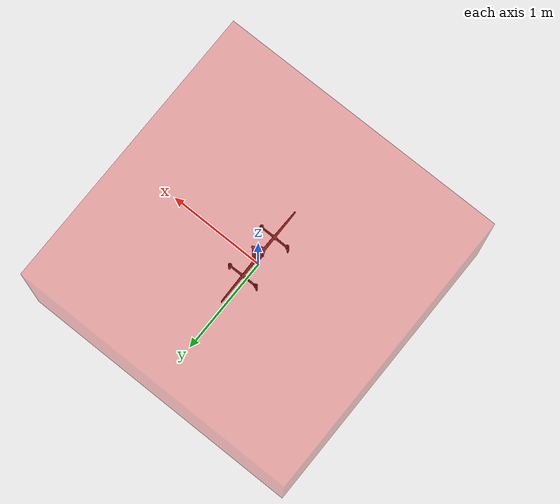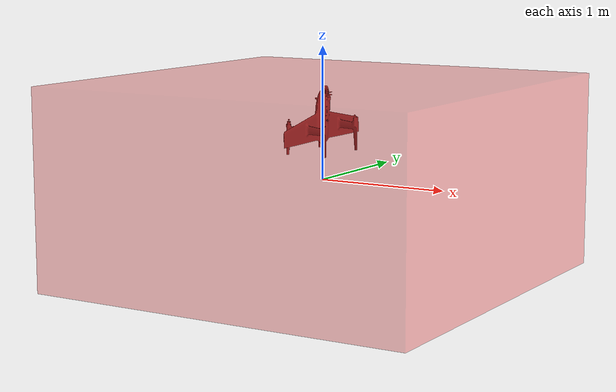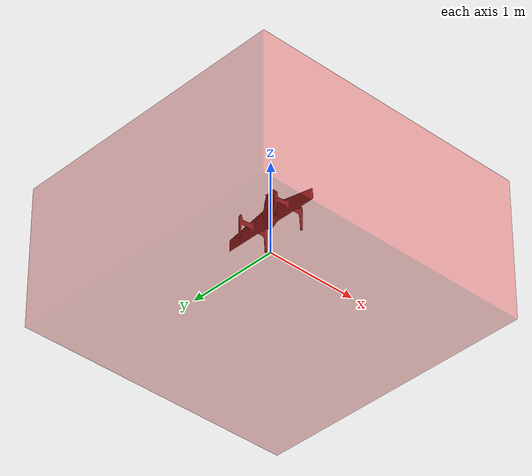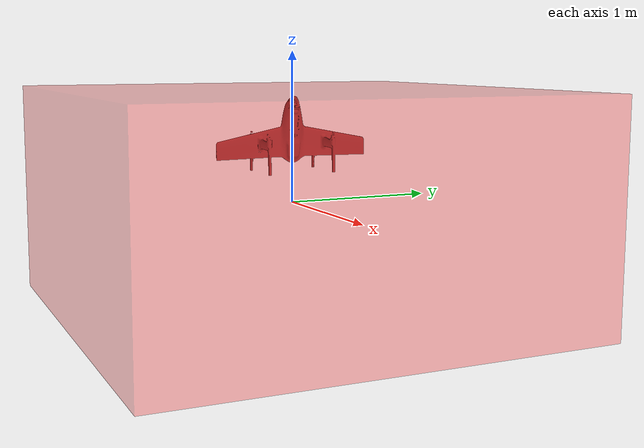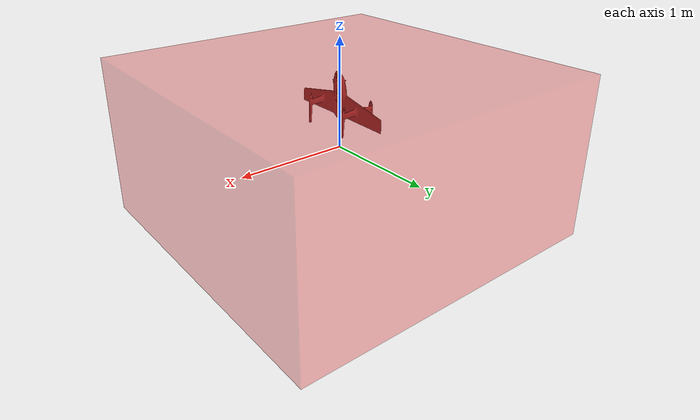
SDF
<?xml version="1.0" encoding="UTF-8"?>
<sdf version='1.9'>
  <model name='intruder_quadtailsitter_figure8'>
    <static>false</static>
    <pose>0 0 0 0 0 0</pose>

    <link name='base_link'>
      <inertial>
        <mass>2.0</mass>
        <inertia>
          <ixx>0.02</ixx>
          <iyy>0.02</iyy>
          <izz>0.04</izz>
        </inertia>
      </inertial>

      <visual name='body_visual'>
        <pose>-0.005 0 0.4 0 0 1.57</pose>
        <geometry>
          <mesh>
            <scale>0.001 0.001 0.001</scale>
            <uri>model://quadtailsitter/meshes/body.dae</uri>
          </mesh>
        </geometry>
        <material>
          <ambient>0.45 0.12 0.12 1.0</ambient>
          <diffuse>0.55 0.15 0.15 1.0</diffuse>
        </material>
      </visual>

      <collision name='body_collision'>
        <!-- FW: pitched 90 deg; long axis along nose (+Z body → horizontal flight). -->
        <pose>0 0 0 0 1.5707 0</pose>
        <geometry>
          <box>
            <size>0.55 0.35 0.25</size>
          </box>
        </geometry>
      </collision>

      <!-- Large visual + collision so gpu_lidar can see the intruder at range. -->
      <visual name='radar_reflector_visual'>
        <pose>0 0 0 0 0 0</pose>
        <geometry>
          <box>
            <size>3.0 3.0 1.5</size>
          </box>
        </geometry>
        <material>
          <ambient>0.8 0.1 0.1 0.35</ambient>
          <diffuse>0.9 0.15 0.15 0.35</diffuse>
        </material>
        <transparency>0.65</transparency>
      </visual>
      <collision name='radar_reflector'>
        <pose>0 0 0 0 0 0</pose>
        <geometry>
          <box>
            <size>3.0 3.0 1.5</size>
          </box>
        </geometry>
      </collision>
    </link>

    <plugin filename="libTrajectoryFollowerController.so"
            name="custom::TrajectoryFollowerController">
      <link_name>base_link</link_name>
      <loop>true</loop>
      <kinematic>true</kinematic>
      <publish_pose>true</publish_pose>
      <pose_publish_rate_hz>25</pose_publish_rate_hz>
      <!-- pose_topic omitted: defaults to /{model_name}/pose -->
      <pitch_offset>1.5707</pitch_offset>
      <!-- Figure-8 (Gerono): a=1000 m, start at spawn crossing, ~100 km/h. -->
      <waypoint><time>0.000</time><pose>0.00 0.00 0.00 0.000 0.000 0.785</pose></waypoint>
      <waypoint><time>1.776</time><pose>34.90 34.88 0.00 0.000 0.000 0.784</pose></waypoint>
      <waypoint><time>3.546</time><pose>69.76 69.59 0.00 0.000 0.000 0.782</pose></waypoint>
      <waypoint><time>5.306</time><pose>104.53 103.96 0.00 0.000 0.000 0.777</pose></waypoint>
      <waypoint><time>7.049</time><pose>139.17 137.82 0.00 0.000 0.000 0.771</pose></waypoint>
      <waypoint><time>8.772</time><pose>173.65 171.01 0.00 0.000 0.000 0.762</pose></waypoint>
      <waypoint><time>10.468</time><pose>207.91 203.37 0.00 0.000 0.000 0.751</pose></waypoint>
      <waypoint><time>12.133</time><pose>241.92 234.74 0.00 0.000 0.000 0.738</pose></waypoint>
      <waypoint><time>13.763</time><pose>275.64 264.96 0.00 0.000 0.000 0.723</pose></waypoint>
      <waypoint><time>15.353</time><pose>309.02 293.89 0.00 0.000 0.000 0.705</pose></waypoint>
      <waypoint><time>16.899</time><pose>342.02 321.39 0.00 0.000 0.000 0.684</pose></waypoint>
      <waypoint><time>18.398</time><pose>374.61 347.33 0.00 0.000 0.000 0.660</pose></waypoint>
      <waypoint><time>19.847</time><pose>406.74 371.57 0.00 0.000 0.000 0.632</pose></waypoint>
      <waypoint><time>21.243</time><pose>438.37 394.01 0.00 0.000 0.000 0.601</pose></waypoint>
      <waypoint><time>22.584</time><pose>469.47 414.52 0.00 0.000 0.000 0.565</pose></waypoint>
      <waypoint><time>23.869</time><pose>500.00 433.01 0.00 0.000 0.000 0.524</pose></waypoint>
      <waypoint><time>25.098</time><pose>529.92 449.40 0.00 0.000 0.000 0.477</pose></waypoint>
      <waypoint><time>26.269</time><pose>559.19 463.59 0.00 0.000 0.000 0.424</pose></waypoint>
      <waypoint><time>27.385</time><pose>587.79 475.53 0.00 0.000 0.000 0.365</pose></waypoint>
      <waypoint><time>28.447</time><pose>615.66 485.15 0.00 0.000 0.000 0.298</pose></waypoint>
      <waypoint><time>29.458</time><pose>642.79 492.40 0.00 0.000 0.000 0.223</pose></waypoint>
      <waypoint><time>30.423</time><pose>669.13 497.26 0.00 0.000 0.000 0.140</pose></waypoint>
      <waypoint><time>31.347</time><pose>694.66 499.70 0.00 0.000 0.000 0.048</pose></waypoint>
      <waypoint><time>32.237</time><pose>719.34 499.70 0.00 0.000 0.000 -0.050</pose></waypoint>
      <waypoint><time>33.099</time><pose>743.14 497.26 0.00 0.000 0.000 -0.155</pose></waypoint>
      <waypoint><time>33.943</time><pose>766.04 492.40 0.00 0.000 0.000 -0.264</pose></waypoint>
      <waypoint><time>34.777</time><pose>788.01 485.15 0.00 0.000 0.000 -0.374</pose></waypoint>
      <waypoint><time>35.610</time><pose>809.02 475.53 0.00 0.000 0.000 -0.484</pose></waypoint>
      <waypoint><time>36.450</time><pose>829.04 463.59 0.00 0.000 0.000 -0.590</pose></waypoint>
      <waypoint><time>37.305</time><pose>848.05 449.40 0.00 0.000 0.000 -0.691</pose></waypoint>
      <waypoint><time>38.182</time><pose>866.03 433.01 0.00 0.000 0.000 -0.785</pose></waypoint>
      <waypoint><time>39.085</time><pose>882.95 414.52 0.00 0.000 0.000 -0.872</pose></waypoint>
      <waypoint><time>40.018</time><pose>898.79 394.01 0.00 0.000 0.000 -0.952</pose></waypoint>
      <waypoint><time>40.985</time><pose>913.55 371.57 0.00 0.000 0.000 -1.025</pose></waypoint>
      <waypoint><time>41.987</time><pose>927.18 347.33 0.00 0.000 0.000 -1.091</pose></waypoint>
      <waypoint><time>43.024</time><pose>939.69 321.39 0.00 0.000 0.000 -1.151</pose></waypoint>
      <waypoint><time>44.095</time><pose>951.06 293.89 0.00 0.000 0.000 -1.206</pose></waypoint>
      <waypoint><time>45.199</time><pose>961.26 264.96 0.00 0.000 0.000 -1.257</pose></waypoint>
      <waypoint><time>46.335</time><pose>970.30 234.74 0.00 0.000 0.000 -1.303</pose></waypoint>
      <waypoint><time>47.499</time><pose>978.15 203.37 0.00 0.000 0.000 -1.347</pose></waypoint>
      <waypoint><time>48.688</time><pose>984.81 171.01 0.00 0.000 0.000 -1.388</pose></waypoint>
      <waypoint><time>49.898</time><pose>990.27 137.82 0.00 0.000 0.000 -1.427</pose></waypoint>
      <waypoint><time>51.127</time><pose>994.52 103.96 0.00 0.000 0.000 -1.464</pose></waypoint>
      <waypoint><time>52.369</time><pose>997.56 69.59 0.00 0.000 0.000 -1.500</pose></waypoint>
      <waypoint><time>53.620</time><pose>999.39 34.88 0.00 0.000 0.000 -1.536</pose></waypoint>
      <waypoint><time>54.875</time><pose>1000.00 0.00 0.00 0.000 0.000 -1.571</pose></waypoint>
      <waypoint><time>56.131</time><pose>999.39 -34.88 0.00 0.000 0.000 -1.606</pose></waypoint>
      <waypoint><time>57.381</time><pose>997.56 -69.59 0.00 0.000 0.000 -1.641</pose></waypoint>
      <waypoint><time>58.623</time><pose>994.52 -103.96 0.00 0.000 0.000 -1.677</pose></waypoint>
      <waypoint><time>59.852</time><pose>990.27 -137.82 0.00 0.000 0.000 -1.715</pose></waypoint>
      <waypoint><time>61.062</time><pose>984.81 -171.01 0.00 0.000 0.000 -1.754</pose></waypoint>
      <waypoint><time>62.251</time><pose>978.15 -203.37 0.00 0.000 0.000 -1.795</pose></waypoint>
      <waypoint><time>63.415</time><pose>970.30 -234.74 0.00 0.000 0.000 -1.838</pose></waypoint>
      <waypoint><time>64.551</time><pose>961.26 -264.96 0.00 0.000 0.000 -1.885</pose></waypoint>
      <waypoint><time>65.655</time><pose>951.06 -293.89 0.00 0.000 0.000 -1.936</pose></waypoint>
      <waypoint><time>66.726</time><pose>939.69 -321.39 0.00 0.000 0.000 -1.991</pose></waypoint>
      <waypoint><time>67.763</time><pose>927.18 -347.33 0.00 0.000 0.000 -2.051</pose></waypoint>
      <waypoint><time>68.765</time><pose>913.55 -371.57 0.00 0.000 0.000 -2.117</pose></waypoint>
      <waypoint><time>69.732</time><pose>898.79 -394.01 0.00 0.000 0.000 -2.190</pose></waypoint>
      <waypoint><time>70.665</time><pose>882.95 -414.52 0.00 0.000 0.000 -2.269</pose></waypoint>
      <waypoint><time>71.568</time><pose>866.03 -433.01 0.00 0.000 0.000 -2.356</pose></waypoint>
      <waypoint><time>72.445</time><pose>848.05 -449.40 0.00 0.000 0.000 -2.450</pose></waypoint>
      <waypoint><time>73.300</time><pose>829.04 -463.59 0.00 0.000 0.000 -2.551</pose></waypoint>
      <waypoint><time>74.140</time><pose>809.02 -475.53 0.00 0.000 0.000 -2.658</pose></waypoint>
      <waypoint><time>74.973</time><pose>788.01 -485.15 0.00 0.000 0.000 -2.767</pose></waypoint>
      <waypoint><time>75.807</time><pose>766.04 -492.40 0.00 0.000 0.000 -2.878</pose></waypoint>
      <waypoint><time>76.651</time><pose>743.14 -497.26 0.00 0.000 0.000 -2.987</pose></waypoint>
      <waypoint><time>77.513</time><pose>719.34 -499.70 0.00 0.000 0.000 -3.091</pose></waypoint>
      <waypoint><time>78.403</time><pose>694.66 -499.70 0.00 0.000 0.000 3.093</pose></waypoint>
      <waypoint><time>79.327</time><pose>669.13 -497.26 0.00 0.000 0.000 3.002</pose></waypoint>
      <waypoint><time>80.292</time><pose>642.79 -492.40 0.00 0.000 0.000 2.919</pose></waypoint>
      <waypoint><time>81.303</time><pose>615.66 -485.15 0.00 0.000 0.000 2.844</pose></waypoint>
      <waypoint><time>82.365</time><pose>587.79 -475.53 0.00 0.000 0.000 2.777</pose></waypoint>
      <waypoint><time>83.481</time><pose>559.19 -463.59 0.00 0.000 0.000 2.717</pose></waypoint>
      <waypoint><time>84.653</time><pose>529.92 -449.40 0.00 0.000 0.000 2.665</pose></waypoint>
      <waypoint><time>85.881</time><pose>500.00 -433.01 0.00 0.000 0.000 2.618</pose></waypoint>
      <waypoint><time>87.166</time><pose>469.47 -414.52 0.00 0.000 0.000 2.577</pose></waypoint>
      <waypoint><time>88.507</time><pose>438.37 -394.01 0.00 0.000 0.000 2.541</pose></waypoint>
      <waypoint><time>89.903</time><pose>406.74 -371.57 0.00 0.000 0.000 2.509</pose></waypoint>
      <waypoint><time>91.352</time><pose>374.61 -347.33 0.00 0.000 0.000 2.482</pose></waypoint>
      <waypoint><time>92.851</time><pose>342.02 -321.39 0.00 0.000 0.000 2.458</pose></waypoint>
      <waypoint><time>94.397</time><pose>309.02 -293.89 0.00 0.000 0.000 2.437</pose></waypoint>
      <waypoint><time>95.987</time><pose>275.64 -264.96 0.00 0.000 0.000 2.419</pose></waypoint>
      <waypoint><time>97.617</time><pose>241.92 -234.74 0.00 0.000 0.000 2.403</pose></waypoint>
      <waypoint><time>99.282</time><pose>207.91 -203.37 0.00 0.000 0.000 2.390</pose></waypoint>
      <waypoint><time>100.978</time><pose>173.65 -171.01 0.00 0.000 0.000 2.380</pose></waypoint>
      <waypoint><time>102.701</time><pose>139.17 -137.82 0.00 0.000 0.000 2.371</pose></waypoint>
      <waypoint><time>104.444</time><pose>104.53 -103.96 0.00 0.000 0.000 2.364</pose></waypoint>
      <waypoint><time>106.204</time><pose>69.76 -69.59 0.00 0.000 0.000 2.360</pose></waypoint>
      <waypoint><time>107.974</time><pose>34.90 -34.88 0.00 0.000 0.000 2.357</pose></waypoint>
      <waypoint><time>109.750</time><pose>0.00 -0.00 0.00 0.000 0.000 2.356</pose></waypoint>
      <waypoint><time>111.526</time><pose>-34.90 34.88 0.00 0.000 0.000 2.357</pose></waypoint>
      <waypoint><time>113.296</time><pose>-69.76 69.59 0.00 0.000 0.000 2.360</pose></waypoint>
      <waypoint><time>115.056</time><pose>-104.53 103.96 0.00 0.000 0.000 2.364</pose></waypoint>
      <waypoint><time>116.799</time><pose>-139.17 137.82 0.00 0.000 0.000 2.371</pose></waypoint>
      <waypoint><time>118.522</time><pose>-173.65 171.01 0.00 0.000 0.000 2.380</pose></waypoint>
      <waypoint><time>120.218</time><pose>-207.91 203.37 0.00 0.000 0.000 2.390</pose></waypoint>
      <waypoint><time>121.883</time><pose>-241.92 234.74 0.00 0.000 0.000 2.403</pose></waypoint>
      <waypoint><time>123.513</time><pose>-275.64 264.96 0.00 0.000 0.000 2.419</pose></waypoint>
      <waypoint><time>125.103</time><pose>-309.02 293.89 0.00 0.000 0.000 2.437</pose></waypoint>
      <waypoint><time>126.649</time><pose>-342.02 321.39 0.00 0.000 0.000 2.458</pose></waypoint>
      <waypoint><time>128.148</time><pose>-374.61 347.33 0.00 0.000 0.000 2.482</pose></waypoint>
      <waypoint><time>129.597</time><pose>-406.74 371.57 0.00 0.000 0.000 2.509</pose></waypoint>
      <waypoint><time>130.993</time><pose>-438.37 394.01 0.00 0.000 0.000 2.541</pose></waypoint>
      <waypoint><time>132.334</time><pose>-469.47 414.52 0.00 0.000 0.000 2.577</pose></waypoint>
      <waypoint><time>133.619</time><pose>-500.00 433.01 0.00 0.000 0.000 2.618</pose></waypoint>
      <waypoint><time>134.848</time><pose>-529.92 449.40 0.00 0.000 0.000 2.665</pose></waypoint>
      <waypoint><time>136.019</time><pose>-559.19 463.59 0.00 0.000 0.000 2.717</pose></waypoint>
      <waypoint><time>137.135</time><pose>-587.79 475.53 0.00 0.000 0.000 2.777</pose></waypoint>
      <waypoint><time>138.197</time><pose>-615.66 485.15 0.00 0.000 0.000 2.844</pose></waypoint>
      <waypoint><time>139.208</time><pose>-642.79 492.40 0.00 0.000 0.000 2.919</pose></waypoint>
      <waypoint><time>140.173</time><pose>-669.13 497.26 0.00 0.000 0.000 3.002</pose></waypoint>
      <waypoint><time>141.097</time><pose>-694.66 499.70 0.00 0.000 0.000 3.093</pose></waypoint>
      <waypoint><time>141.987</time><pose>-719.34 499.70 0.00 0.000 0.000 -3.091</pose></waypoint>
      <waypoint><time>142.849</time><pose>-743.14 497.26 0.00 0.000 0.000 -2.987</pose></waypoint>
      <waypoint><time>143.693</time><pose>-766.04 492.40 0.00 0.000 0.000 -2.878</pose></waypoint>
      <waypoint><time>144.527</time><pose>-788.01 485.15 0.00 0.000 0.000 -2.767</pose></waypoint>
      <waypoint><time>145.360</time><pose>-809.02 475.53 0.00 0.000 0.000 -2.658</pose></waypoint>
      <waypoint><time>146.200</time><pose>-829.04 463.59 0.00 0.000 0.000 -2.551</pose></waypoint>
      <waypoint><time>147.055</time><pose>-848.05 449.40 0.00 0.000 0.000 -2.450</pose></waypoint>
      <waypoint><time>147.932</time><pose>-866.03 433.01 0.00 0.000 0.000 -2.356</pose></waypoint>
      <waypoint><time>148.835</time><pose>-882.95 414.52 0.00 0.000 0.000 -2.269</pose></waypoint>
      <waypoint><time>149.768</time><pose>-898.79 394.01 0.00 0.000 0.000 -2.190</pose></waypoint>
      <waypoint><time>150.735</time><pose>-913.55 371.57 0.00 0.000 0.000 -2.117</pose></waypoint>
      <waypoint><time>151.737</time><pose>-927.18 347.33 0.00 0.000 0.000 -2.051</pose></waypoint>
      <waypoint><time>152.774</time><pose>-939.69 321.39 0.00 0.000 0.000 -1.991</pose></waypoint>
      <waypoint><time>153.845</time><pose>-951.06 293.89 0.00 0.000 0.000 -1.936</pose></waypoint>
      <waypoint><time>154.949</time><pose>-961.26 264.96 0.00 0.000 0.000 -1.885</pose></waypoint>
      <waypoint><time>156.085</time><pose>-970.30 234.74 0.00 0.000 0.000 -1.838</pose></waypoint>
      <waypoint><time>157.249</time><pose>-978.15 203.37 0.00 0.000 0.000 -1.795</pose></waypoint>
      <waypoint><time>158.438</time><pose>-984.81 171.01 0.00 0.000 0.000 -1.754</pose></waypoint>
      <waypoint><time>159.648</time><pose>-990.27 137.82 0.00 0.000 0.000 -1.715</pose></waypoint>
      <waypoint><time>160.877</time><pose>-994.52 103.96 0.00 0.000 0.000 -1.677</pose></waypoint>
      <waypoint><time>162.119</time><pose>-997.56 69.59 0.00 0.000 0.000 -1.641</pose></waypoint>
      <waypoint><time>163.370</time><pose>-999.39 34.88 0.00 0.000 0.000 -1.606</pose></waypoint>
      <waypoint><time>164.625</time><pose>-1000.00 0.00 0.00 0.000 0.000 -1.571</pose></waypoint>
      <waypoint><time>165.881</time><pose>-999.39 -34.88 0.00 0.000 0.000 -1.536</pose></waypoint>
      <waypoint><time>167.131</time><pose>-997.56 -69.59 0.00 0.000 0.000 -1.500</pose></waypoint>
      <waypoint><time>168.373</time><pose>-994.52 -103.96 0.00 0.000 0.000 -1.464</pose></waypoint>
      <waypoint><time>169.602</time><pose>-990.27 -137.82 0.00 0.000 0.000 -1.427</pose></waypoint>
      <waypoint><time>170.812</time><pose>-984.81 -171.01 0.00 0.000 0.000 -1.388</pose></waypoint>
      <waypoint><time>172.001</time><pose>-978.15 -203.37 0.00 0.000 0.000 -1.347</pose></waypoint>
      <waypoint><time>173.165</time><pose>-970.30 -234.74 0.00 0.000 0.000 -1.303</pose></waypoint>
      <waypoint><time>174.301</time><pose>-961.26 -264.96 0.00 0.000 0.000 -1.257</pose></waypoint>
      <waypoint><time>175.405</time><pose>-951.06 -293.89 0.00 0.000 0.000 -1.206</pose></waypoint>
      <waypoint><time>176.477</time><pose>-939.69 -321.39 0.00 0.000 0.000 -1.151</pose></waypoint>
      <waypoint><time>177.513</time><pose>-927.18 -347.33 0.00 0.000 0.000 -1.091</pose></waypoint>
      <waypoint><time>178.515</time><pose>-913.55 -371.57 0.00 0.000 0.000 -1.025</pose></waypoint>
      <waypoint><time>179.482</time><pose>-898.79 -394.01 0.00 0.000 0.000 -0.952</pose></waypoint>
      <waypoint><time>180.415</time><pose>-882.95 -414.52 0.00 0.000 0.000 -0.872</pose></waypoint>
      <waypoint><time>181.318</time><pose>-866.03 -433.01 0.00 0.000 0.000 -0.785</pose></waypoint>
      <waypoint><time>182.195</time><pose>-848.05 -449.40 0.00 0.000 0.000 -0.691</pose></waypoint>
      <waypoint><time>183.050</time><pose>-829.04 -463.59 0.00 0.000 0.000 -0.590</pose></waypoint>
      <waypoint><time>183.890</time><pose>-809.02 -475.53 0.00 0.000 0.000 -0.484</pose></waypoint>
      <waypoint><time>184.723</time><pose>-788.01 -485.15 0.00 0.000 0.000 -0.374</pose></waypoint>
      <waypoint><time>185.557</time><pose>-766.04 -492.40 0.00 0.000 0.000 -0.264</pose></waypoint>
      <waypoint><time>186.401</time><pose>-743.14 -497.26 0.00 0.000 0.000 -0.155</pose></waypoint>
      <waypoint><time>187.263</time><pose>-719.34 -499.70 0.00 0.000 0.000 -0.050</pose></waypoint>
      <waypoint><time>188.153</time><pose>-694.66 -499.70 0.00 0.000 0.000 0.048</pose></waypoint>
      <waypoint><time>189.077</time><pose>-669.13 -497.26 0.00 0.000 0.000 0.140</pose></waypoint>
      <waypoint><time>190.042</time><pose>-642.79 -492.40 0.00 0.000 0.000 0.223</pose></waypoint>
      <waypoint><time>191.053</time><pose>-615.66 -485.15 0.00 0.000 0.000 0.298</pose></waypoint>
      <waypoint><time>192.115</time><pose>-587.79 -475.53 0.00 0.000 0.000 0.365</pose></waypoint>
      <waypoint><time>193.231</time><pose>-559.19 -463.59 0.00 0.000 0.000 0.424</pose></waypoint>
      <waypoint><time>194.403</time><pose>-529.92 -449.40 0.00 0.000 0.000 0.477</pose></waypoint>
      <waypoint><time>195.631</time><pose>-500.00 -433.01 0.00 0.000 0.000 0.524</pose></waypoint>
      <waypoint><time>196.916</time><pose>-469.47 -414.52 0.00 0.000 0.000 0.565</pose></waypoint>
      <waypoint><time>198.257</time><pose>-438.37 -394.01 0.00 0.000 0.000 0.601</pose></waypoint>
      <waypoint><time>199.653</time><pose>-406.74 -371.57 0.00 0.000 0.000 0.632</pose></waypoint>
      <waypoint><time>201.102</time><pose>-374.61 -347.33 0.00 0.000 0.000 0.660</pose></waypoint>
      <waypoint><time>202.601</time><pose>-342.02 -321.39 0.00 0.000 0.000 0.684</pose></waypoint>
      <waypoint><time>204.147</time><pose>-309.02 -293.89 0.00 0.000 0.000 0.705</pose></waypoint>
      <waypoint><time>205.737</time><pose>-275.64 -264.96 0.00 0.000 0.000 0.723</pose></waypoint>
      <waypoint><time>207.367</time><pose>-241.92 -234.74 0.00 0.000 0.000 0.738</pose></waypoint>
      <waypoint><time>209.032</time><pose>-207.91 -203.37 0.00 0.000 0.000 0.751</pose></waypoint>
      <waypoint><time>210.728</time><pose>-173.65 -171.01 0.00 0.000 0.000 0.762</pose></waypoint>
      <waypoint><time>212.451</time><pose>-139.17 -137.82 0.00 0.000 0.000 0.771</pose></waypoint>
      <waypoint><time>214.194</time><pose>-104.53 -103.96 0.00 0.000 0.000 0.777</pose></waypoint>
      <waypoint><time>215.954</time><pose>-69.76 -69.59 0.00 0.000 0.000 0.782</pose></waypoint>
      <waypoint><time>217.724</time><pose>-34.90 -34.88 0.00 0.000 0.000 0.784</pose></waypoint>
      <waypoint><time>219.500</time><pose>-0.00 -0.00 0.00 0.000 0.000 0.785</pose></waypoint>
    </plugin>
  </model>
</sdf>
